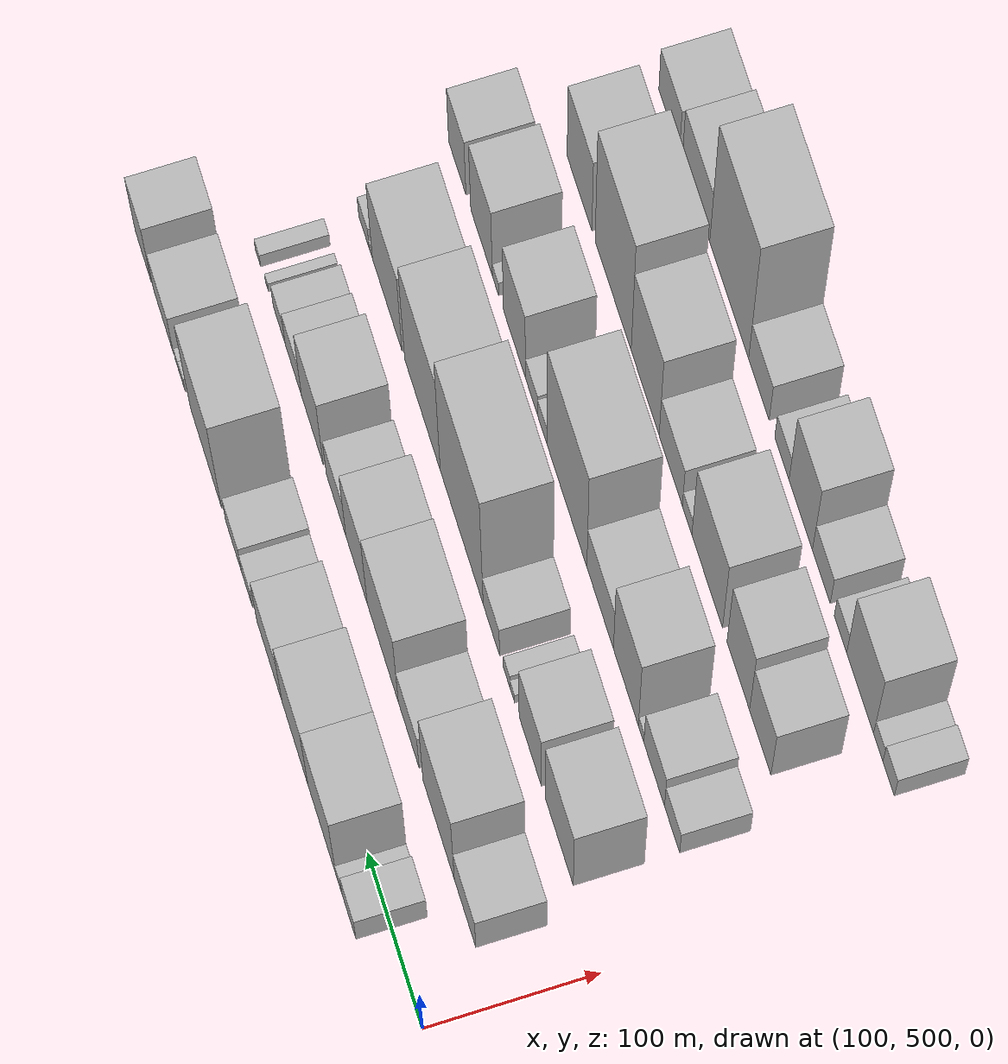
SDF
<sdf version="1.6">
 <world name="default">
  <model name="building_50">
   <static>1</static>
   <pose>100.0000 569.3878 0 0.000000 0.000000 0.000000</pose>
   <link name="link">
    <pose>0 0 24.00 0 0 0</pose>
    <collision name="collision"><geometry><box><size>40.0000 25.1628 48.0000</size></box></geometry></collision>
    <visual name="visual">
     <cast_shadows>0</cast_shadows>
     <geometry><box><size>40.0000 25.1628 48.0000</size></box></geometry>
     <material>
      <script>
       <uri>model://HANNAS_wall/materials/scripts</uri>
       <uri>model://HANNAS_wall/materials/textures</uri>
       <name>vrc/HANNAS_wall</name>
      </script>
     </material>
    </visual>
   </link>
  </model>
  <model name="building_51">
   <static>1</static>
   <pose>100.0000 587.8766 0 0.000000 0.000000 0.000000</pose>
   <link name="link">
    <pose>0 0 12.00 0 0 0</pose>
    <collision name="collision"><geometry><box><size>40.0000 11.8147 24.0000</size></box></geometry></collision>
    <visual name="visual">
     <cast_shadows>0</cast_shadows>
     <geometry><box><size>40.0000 11.8147 24.0000</size></box></geometry>
     <material>
      <script>
       <uri>model://HANNAS_wall/materials/scripts</uri>
       <uri>model://HANNAS_wall/materials/textures</uri>
       <name>vrc/HANNAS_wall</name>
      </script>
     </material>
    </visual>
   </link>
  </model>
  <model name="building_52">
   <static>1</static>
   <pose>100.0000 619.3461 0 0.000000 0.000000 0.000000</pose>
   <link name="link">
    <pose>0 0 66.00 0 0 0</pose>
    <collision name="collision"><geometry><box><size>40.0000 51.1244 132.0000</size></box></geometry></collision>
    <visual name="visual">
     <cast_shadows>0</cast_shadows>
     <geometry><box><size>40.0000 51.1244 132.0000</size></box></geometry>
     <material>
      <script>
       <uri>model://HANNAS_wall/materials/scripts</uri>
       <uri>model://HANNAS_wall/materials/textures</uri>
       <name>vrc/HANNAS_wall</name>
      </script>
     </material>
    </visual>
   </link>
  </model>
  <model name="building_53">
   <static>1</static>
   <pose>100.0000 669.0104 0 0.000000 0.000000 0.000000</pose>
   <link name="link">
    <pose>0 0 64.50 0 0 0</pose>
    <collision name="collision"><geometry><box><size>40.0000 48.2042 129.0000</size></box></geometry></collision>
    <visual name="visual">
     <cast_shadows>0</cast_shadows>
     <geometry><box><size>40.0000 48.2042 129.0000</size></box></geometry>
     <material>
      <script>
       <uri>model://HANNAS_wall/materials/scripts</uri>
       <uri>model://HANNAS_wall/materials/textures</uri>
       <name>vrc/HANNAS_wall</name>
      </script>
     </material>
    </visual>
   </link>
  </model>
  <model name="building_54">
   <static>1</static>
   <pose>100.0000 716.7406 0 0.000000 0.000000 0.000000</pose>
   <link name="link">
    <pose>0 0 45.00 0 0 0</pose>
    <collision name="collision"><geometry><box><size>40.0000 47.2561 90.0000</size></box></geometry></collision>
    <visual name="visual">
     <cast_shadows>0</cast_shadows>
     <geometry><box><size>40.0000 47.2561 90.0000</size></box></geometry>
     <material>
      <script>
       <uri>model://HANNAS_wall/materials/scripts</uri>
       <uri>model://HANNAS_wall/materials/textures</uri>
       <name>vrc/HANNAS_wall</name>
      </script>
     </material>
    </visual>
   </link>
  </model>
  <model name="building_55">
   <static>1</static>
   <pose>100.0000 758.7014 0 0.000000 0.000000 0.000000</pose>
   <link name="link">
    <pose>0 0 19.50 0 0 0</pose>
    <collision name="collision"><geometry><box><size>40.0000 20.6656 39.0000</size></box></geometry></collision>
    <visual name="visual">
     <cast_shadows>0</cast_shadows>
     <geometry><box><size>40.0000 20.6656 39.0000</size></box></geometry>
     <material>
      <script>
       <uri>model://HANNAS_wall/materials/scripts</uri>
       <uri>model://HANNAS_wall/materials/textures</uri>
       <name>vrc/HANNAS_wall</name>
      </script>
     </material>
    </visual>
   </link>
  </model>
  <model name="building_56">
   <static>1</static>
   <pose>100.0000 783.9269 0 0.000000 0.000000 0.000000</pose>
   <link name="link">
    <pose>0 0 25.50 0 0 0</pose>
    <collision name="collision"><geometry><box><size>40.0000 29.7854 51.0000</size></box></geometry></collision>
    <visual name="visual">
     <cast_shadows>0</cast_shadows>
     <geometry><box><size>40.0000 29.7854 51.0000</size></box></geometry>
     <material>
      <script>
       <uri>model://HANNAS_wall/materials/scripts</uri>
       <uri>model://HANNAS_wall/materials/textures</uri>
       <name>vrc/HANNAS_wall</name>
      </script>
     </material>
    </visual>
   </link>
  </model>
  <model name="building_57">
   <static>1</static>
   <pose>100.0000 836.3452 0 0.000000 0.000000 0.000000</pose>
   <link name="link">
    <pose>0 0 84.00 0 0 0</pose>
    <collision name="collision"><geometry><box><size>40.0000 59.0511 168.0000</size></box></geometry></collision>
    <visual name="visual">
     <cast_shadows>0</cast_shadows>
     <geometry><box><size>40.0000 59.0511 168.0000</size></box></geometry>
     <material>
      <script>
       <uri>model://HANNAS_wall/materials/scripts</uri>
       <uri>model://HANNAS_wall/materials/textures</uri>
       <name>vrc/HANNAS_wall</name>
      </script>
     </material>
    </visual>
   </link>
  </model>
  <model name="building_58">
   <static>1</static>
   <pose>100.0000 881.3237 0 0.000000 0.000000 0.000000</pose>
   <link name="link">
    <pose>0 0 12.00 0 0 0</pose>
    <collision name="collision"><geometry><box><size>40.0000 10.9061 24.0000</size></box></geometry></collision>
    <visual name="visual">
     <cast_shadows>0</cast_shadows>
     <geometry><box><size>40.0000 10.9061 24.0000</size></box></geometry>
     <material>
      <script>
       <uri>model://HANNAS_wall/materials/scripts</uri>
       <uri>model://HANNAS_wall/materials/textures</uri>
       <name>vrc/HANNAS_wall</name>
      </script>
     </material>
    </visual>
   </link>
  </model>
  <model name="building_59">
   <static>1</static>
   <pose>100.0000 891.0435 0 0.000000 0.000000 0.000000</pose>
   <link name="link">
    <pose>0 0 10.50 0 0 0</pose>
    <collision name="collision"><geometry><box><size>40.0000 8.5335 21.0000</size></box></geometry></collision>
    <visual name="visual">
     <cast_shadows>0</cast_shadows>
     <geometry><box><size>40.0000 8.5335 21.0000</size></box></geometry>
     <material>
      <script>
       <uri>model://HANNAS_wall/materials/scripts</uri>
       <uri>model://HANNAS_wall/materials/textures</uri>
       <name>vrc/HANNAS_wall</name>
      </script>
     </material>
    </visual>
   </link>
  </model>
  <model name="building_60">
   <static>1</static>
   <pose>100.0000 917.4836 0 0.000000 0.000000 0.000000</pose>
   <link name="link">
    <pose>0 0 34.50 0 0 0</pose>
    <collision name="collision"><geometry><box><size>40.0000 38.3465 69.0000</size></box></geometry></collision>
    <visual name="visual">
     <cast_shadows>0</cast_shadows>
     <geometry><box><size>40.0000 38.3465 69.0000</size></box></geometry>
     <material>
      <script>
       <uri>model://HANNAS_wall/materials/scripts</uri>
       <uri>model://HANNAS_wall/materials/textures</uri>
       <name>vrc/HANNAS_wall</name>
      </script>
     </material>
    </visual>
   </link>
  </model>
  <model name="building_61">
   <static>1</static>
   <pose>100.0000 956.0121 0 0.000000 0.000000 0.000000</pose>
   <link name="link">
    <pose>0 0 51.00 0 0 0</pose>
    <collision name="collision"><geometry><box><size>40.0000 30.7106 102.0000</size></box></geometry></collision>
    <visual name="visual">
     <cast_shadows>0</cast_shadows>
     <geometry><box><size>40.0000 30.7106 102.0000</size></box></geometry>
     <material>
      <script>
       <uri>model://HANNAS_wall/materials/scripts</uri>
       <uri>model://HANNAS_wall/materials/textures</uri>
       <name>vrc/HANNAS_wall</name>
      </script>
     </material>
    </visual>
   </link>
  </model>
  <model name="building_105">
   <static>1</static>
   <pose>160.0000 552.6745 0 0.000000 0.000000 0.000000</pose>
   <link name="link">
    <pose>0 0 34.50 0 0 0</pose>
    <collision name="collision"><geometry><box><size>40.0000 38.8337 69.0000</size></box></geometry></collision>
    <visual name="visual">
     <cast_shadows>0</cast_shadows>
     <geometry><box><size>40.0000 38.8337 69.0000</size></box></geometry>
     <material>
      <script>
       <uri>model://HANNAS_wall/materials/scripts</uri>
       <uri>model://HANNAS_wall/materials/textures</uri>
       <name>vrc/HANNAS_wall</name>
      </script>
     </material>
    </visual>
   </link>
  </model>
  <model name="building_106">
   <static>1</static>
   <pose>160.0000 600.6269 0 0.000000 0.000000 0.000000</pose>
   <link name="link">
    <pose>0 0 75.00 0 0 0</pose>
    <collision name="collision"><geometry><box><size>40.0000 57.0711 150.0000</size></box></geometry></collision>
    <visual name="visual">
     <cast_shadows>0</cast_shadows>
     <geometry><box><size>40.0000 57.0711 150.0000</size></box></geometry>
     <material>
      <script>
       <uri>model://HANNAS_wall/materials/scripts</uri>
       <uri>model://HANNAS_wall/materials/textures</uri>
       <name>vrc/HANNAS_wall</name>
      </script>
     </material>
    </visual>
   </link>
  </model>
  <model name="building_107">
   <static>1</static>
   <pose>160.0000 655.2852 0 0.000000 0.000000 0.000000</pose>
   <link name="link">
    <pose>0 0 36.00 0 0 0</pose>
    <collision name="collision"><geometry><box><size>40.0000 38.2454 72.0000</size></box></geometry></collision>
    <visual name="visual">
     <cast_shadows>0</cast_shadows>
     <geometry><box><size>40.0000 38.2454 72.0000</size></box></geometry>
     <material>
      <script>
       <uri>model://HANNAS_wall/materials/scripts</uri>
       <uri>model://HANNAS_wall/materials/textures</uri>
       <name>vrc/HANNAS_wall</name>
      </script>
     </material>
    </visual>
   </link>
  </model>
  <model name="building_108">
   <static>1</static>
   <pose>160.0000 702.9726 0 0.000000 0.000000 0.000000</pose>
   <link name="link">
    <pose>0 0 72.00 0 0 0</pose>
    <collision name="collision"><geometry><box><size>40.0000 57.1295 144.0000</size></box></geometry></collision>
    <visual name="visual">
     <cast_shadows>0</cast_shadows>
     <geometry><box><size>40.0000 57.1295 144.0000</size></box></geometry>
     <material>
      <script>
       <uri>model://HANNAS_wall/materials/scripts</uri>
       <uri>model://HANNAS_wall/materials/textures</uri>
       <name>vrc/HANNAS_wall</name>
      </script>
     </material>
    </visual>
   </link>
  </model>
  <model name="building_109">
   <static>1</static>
   <pose>160.0000 751.3881 0 0.000000 0.000000 0.000000</pose>
   <link name="link">
    <pose>0 0 66.00 0 0 0</pose>
    <collision name="collision"><geometry><box><size>40.0000 39.7014 132.0000</size></box></geometry></collision>
    <visual name="visual">
     <cast_shadows>0</cast_shadows>
     <geometry><box><size>40.0000 39.7014 132.0000</size></box></geometry>
     <material>
      <script>
       <uri>model://HANNAS_wall/materials/scripts</uri>
       <uri>model://HANNAS_wall/materials/textures</uri>
       <name>vrc/HANNAS_wall</name>
      </script>
     </material>
    </visual>
   </link>
  </model>
  <model name="building_110">
   <static>1</static>
   <pose>160.0000 789.3968 0 0.000000 0.000000 0.000000</pose>
   <link name="link">
    <pose>0 0 36.00 0 0 0</pose>
    <collision name="collision"><geometry><box><size>40.0000 36.3159 72.0000</size></box></geometry></collision>
    <visual name="visual">
     <cast_shadows>0</cast_shadows>
     <geometry><box><size>40.0000 36.3159 72.0000</size></box></geometry>
     <material>
      <script>
       <uri>model://HANNAS_wall/materials/scripts</uri>
       <uri>model://HANNAS_wall/materials/textures</uri>
       <name>vrc/HANNAS_wall</name>
      </script>
     </material>
    </visual>
   </link>
  </model>
  <model name="building_111">
   <static>1</static>
   <pose>160.0000 833.9663 0 0.000000 0.000000 0.000000</pose>
   <link name="link">
    <pose>0 0 61.50 0 0 0</pose>
    <collision name="collision"><geometry><box><size>40.0000 40.8233 123.0000</size></box></geometry></collision>
    <visual name="visual">
     <cast_shadows>0</cast_shadows>
     <geometry><box><size>40.0000 40.8233 123.0000</size></box></geometry>
     <material>
      <script>
       <uri>model://HANNAS_wall/materials/scripts</uri>
       <uri>model://HANNAS_wall/materials/textures</uri>
       <name>vrc/HANNAS_wall</name>
      </script>
     </material>
    </visual>
   </link>
  </model>
  <model name="building_112">
   <static>1</static>
   <pose>160.0000 869.8284 0 0.000000 0.000000 0.000000</pose>
   <link name="link">
    <pose>0 0 30.00 0 0 0</pose>
    <collision name="collision"><geometry><box><size>40.0000 30.9010 60.0000</size></box></geometry></collision>
    <visual name="visual">
     <cast_shadows>0</cast_shadows>
     <geometry><box><size>40.0000 30.9010 60.0000</size></box></geometry>
     <material>
      <script>
       <uri>model://HANNAS_wall/materials/scripts</uri>
       <uri>model://HANNAS_wall/materials/textures</uri>
       <name>vrc/HANNAS_wall</name>
      </script>
     </material>
    </visual>
   </link>
  </model>
  <model name="building_113">
   <static>1</static>
   <pose>160.0000 896.4220 0 0.000000 0.000000 0.000000</pose>
   <link name="link">
    <pose>0 0 21.00 0 0 0</pose>
    <collision name="collision"><geometry><box><size>40.0000 22.2862 42.0000</size></box></geometry></collision>
    <visual name="visual">
     <cast_shadows>0</cast_shadows>
     <geometry><box><size>40.0000 22.2862 42.0000</size></box></geometry>
     <material>
      <script>
       <uri>model://HANNAS_wall/materials/scripts</uri>
       <uri>model://HANNAS_wall/materials/textures</uri>
       <name>vrc/HANNAS_wall</name>
      </script>
     </material>
    </visual>
   </link>
  </model>
  <model name="building_114">
   <static>1</static>
   <pose>160.0000 919.6144 0 0.000000 0.000000 0.000000</pose>
   <link name="link">
    <pose>0 0 7.50 0 0 0</pose>
    <collision name="collision"><geometry><box><size>40.0000 6.0985 15.0000</size></box></geometry></collision>
    <visual name="visual">
     <cast_shadows>0</cast_shadows>
     <geometry><box><size>40.0000 6.0985 15.0000</size></box></geometry>
     <material>
      <script>
       <uri>model://HANNAS_wall/materials/scripts</uri>
       <uri>model://HANNAS_wall/materials/textures</uri>
       <name>vrc/HANNAS_wall</name>
      </script>
     </material>
    </visual>
   </link>
  </model>
  <model name="building_115">
   <static>1</static>
   <pose>160.0000 936.6281 0 0.000000 0.000000 0.000000</pose>
   <link name="link">
    <pose>0 0 10.50 0 0 0</pose>
    <collision name="collision"><geometry><box><size>40.0000 9.9290 21.0000</size></box></geometry></collision>
    <visual name="visual">
     <cast_shadows>0</cast_shadows>
     <geometry><box><size>40.0000 9.9290 21.0000</size></box></geometry>
     <material>
      <script>
       <uri>model://HANNAS_wall/materials/scripts</uri>
       <uri>model://HANNAS_wall/materials/textures</uri>
       <name>vrc/HANNAS_wall</name>
      </script>
     </material>
    </visual>
   </link>
  </model>
  <model name="building_160">
   <static>1</static>
   <pose>220.0000 574.8858 0 0.000000 0.000000 0.000000</pose>
   <link name="link">
    <pose>0 0 63.00 0 0 0</pose>
    <collision name="collision"><geometry><box><size>40.0000 50.1714 126.0000</size></box></geometry></collision>
    <visual name="visual">
     <cast_shadows>0</cast_shadows>
     <geometry><box><size>40.0000 50.1714 126.0000</size></box></geometry>
     <material>
      <script>
       <uri>model://HANNAS_wall/materials/scripts</uri>
       <uri>model://HANNAS_wall/materials/textures</uri>
       <name>vrc/HANNAS_wall</name>
      </script>
     </material>
    </visual>
   </link>
  </model>
  <model name="building_161">
   <static>1</static>
   <pose>220.0000 627.0878 0 0.000000 0.000000 0.000000</pose>
   <link name="link">
    <pose>0 0 55.50 0 0 0</pose>
    <collision name="collision"><geometry><box><size>40.0000 40.2326 111.0000</size></box></geometry></collision>
    <visual name="visual">
     <cast_shadows>0</cast_shadows>
     <geometry><box><size>40.0000 40.2326 111.0000</size></box></geometry>
     <material>
      <script>
       <uri>model://HANNAS_wall/materials/scripts</uri>
       <uri>model://HANNAS_wall/materials/textures</uri>
       <name>vrc/HANNAS_wall</name>
      </script>
     </material>
    </visual>
   </link>
  </model>
  <model name="building_162">
   <static>1</static>
   <pose>220.0000 659.6000 0 0.000000 0.000000 0.000000</pose>
   <link name="link">
    <pose>0 0 9.00 0 0 0</pose>
    <collision name="collision"><geometry><box><size>40.0000 8.7918 18.0000</size></box></geometry></collision>
    <visual name="visual">
     <cast_shadows>0</cast_shadows>
     <geometry><box><size>40.0000 8.7918 18.0000</size></box></geometry>
     <material>
      <script>
       <uri>model://HANNAS_wall/materials/scripts</uri>
       <uri>model://HANNAS_wall/materials/textures</uri>
       <name>vrc/HANNAS_wall</name>
      </script>
     </material>
    </visual>
   </link>
  </model>
  <model name="building_163">
   <static>1</static>
   <pose>220.0000 669.7903 0 0.000000 0.000000 0.000000</pose>
   <link name="link">
    <pose>0 0 13.50 0 0 0</pose>
    <collision name="collision"><geometry><box><size>40.0000 11.5890 27.0000</size></box></geometry></collision>
    <visual name="visual">
     <cast_shadows>0</cast_shadows>
     <geometry><box><size>40.0000 11.5890 27.0000</size></box></geometry>
     <material>
      <script>
       <uri>model://HANNAS_wall/materials/scripts</uri>
       <uri>model://HANNAS_wall/materials/textures</uri>
       <name>vrc/HANNAS_wall</name>
      </script>
     </material>
    </visual>
   </link>
  </model>
  <model name="building_164">
   <static>1</static>
   <pose>220.0000 697.6209 0 0.000000 0.000000 0.000000</pose>
   <link name="link">
    <pose>0 0 30.00 0 0 0</pose>
    <collision name="collision"><geometry><box><size>40.0000 30.0722 60.0000</size></box></geometry></collision>
    <visual name="visual">
     <cast_shadows>0</cast_shadows>
     <geometry><box><size>40.0000 30.0722 60.0000</size></box></geometry>
     <material>
      <script>
       <uri>model://HANNAS_wall/materials/scripts</uri>
       <uri>model://HANNAS_wall/materials/textures</uri>
       <name>vrc/HANNAS_wall</name>
      </script>
     </material>
    </visual>
   </link>
  </model>
  <model name="building_165">
   <static>1</static>
   <pose>220.0000 751.9782 0 0.000000 0.000000 0.000000</pose>
   <link name="link">
    <pose>0 0 111.00 0 0 0</pose>
    <collision name="collision"><geometry><box><size>40.0000 78.6422 222.0000</size></box></geometry></collision>
    <visual name="visual">
     <cast_shadows>0</cast_shadows>
     <geometry><box><size>40.0000 78.6422 222.0000</size></box></geometry>
     <material>
      <script>
       <uri>model://HANNAS_wall/materials/scripts</uri>
       <uri>model://HANNAS_wall/materials/textures</uri>
       <name>vrc/HANNAS_wall</name>
      </script>
     </material>
    </visual>
   </link>
  </model>
  <model name="building_166">
   <static>1</static>
   <pose>220.0000 824.3027 0 0.000000 0.000000 0.000000</pose>
   <link name="link">
    <pose>0 0 90.00 0 0 0</pose>
    <collision name="collision"><geometry><box><size>40.0000 66.0068 180.0000</size></box></geometry></collision>
    <visual name="visual">
     <cast_shadows>0</cast_shadows>
     <geometry><box><size>40.0000 66.0068 180.0000</size></box></geometry>
     <material>
      <script>
       <uri>model://HANNAS_wall/materials/scripts</uri>
       <uri>model://HANNAS_wall/materials/textures</uri>
       <name>vrc/HANNAS_wall</name>
      </script>
     </material>
    </visual>
   </link>
  </model>
  <model name="building_167">
   <static>1</static>
   <pose>220.0000 889.9372 0 0.000000 0.000000 0.000000</pose>
   <link name="link">
    <pose>0 0 70.50 0 0 0</pose>
    <collision name="collision"><geometry><box><size>40.0000 55.2624 141.0000</size></box></geometry></collision>
    <visual name="visual">
     <cast_shadows>0</cast_shadows>
     <geometry><box><size>40.0000 55.2624 141.0000</size></box></geometry>
     <material>
      <script>
       <uri>model://HANNAS_wall/materials/scripts</uri>
       <uri>model://HANNAS_wall/materials/textures</uri>
       <name>vrc/HANNAS_wall</name>
      </script>
     </material>
    </visual>
   </link>
  </model>
  <model name="building_168">
   <static>1</static>
   <pose>220.0000 920.6614 0 0.000000 0.000000 0.000000</pose>
   <link name="link">
    <pose>0 0 7.50 0 0 0</pose>
    <collision name="collision"><geometry><box><size>40.0000 6.1858 15.0000</size></box></geometry></collision>
    <visual name="visual">
     <cast_shadows>0</cast_shadows>
     <geometry><box><size>40.0000 6.1858 15.0000</size></box></geometry>
     <material>
      <script>
       <uri>model://HANNAS_wall/materials/scripts</uri>
       <uri>model://HANNAS_wall/materials/textures</uri>
       <name>vrc/HANNAS_wall</name>
      </script>
     </material>
    </visual>
   </link>
  </model>
  <model name="building_169">
   <static>1</static>
   <pose>220.0000 933.4754 0 0.000000 0.000000 0.000000</pose>
   <link name="link">
    <pose>0 0 18.00 0 0 0</pose>
    <collision name="collision"><geometry><box><size>40.0000 19.4423 36.0000</size></box></geometry></collision>
    <visual name="visual">
     <cast_shadows>0</cast_shadows>
     <geometry><box><size>40.0000 19.4423 36.0000</size></box></geometry>
     <material>
      <script>
       <uri>model://HANNAS_wall/materials/scripts</uri>
       <uri>model://HANNAS_wall/materials/textures</uri>
       <name>vrc/HANNAS_wall</name>
      </script>
     </material>
    </visual>
   </link>
  </model>
  <model name="building_209">
   <static>1</static>
   <pose>280.0000 563.1591 0 0.000000 0.000000 0.000000</pose>
   <link name="link">
    <pose>0 0 24.00 0 0 0</pose>
    <collision name="collision"><geometry><box><size>40.0000 26.8155 48.0000</size></box></geometry></collision>
    <visual name="visual">
     <cast_shadows>0</cast_shadows>
     <geometry><box><size>40.0000 26.8155 48.0000</size></box></geometry>
     <material>
      <script>
       <uri>model://HANNAS_wall/materials/scripts</uri>
       <uri>model://HANNAS_wall/materials/textures</uri>
       <name>vrc/HANNAS_wall</name>
      </script>
     </material>
    </visual>
   </link>
  </model>
  <model name="building_210">
   <static>1</static>
   <pose>280.0000 594.9593 0 0.000000 0.000000 0.000000</pose>
   <link name="link">
    <pose>0 0 34.50 0 0 0</pose>
    <collision name="collision"><geometry><box><size>40.0000 36.7851 69.0000</size></box></geometry></collision>
    <visual name="visual">
     <cast_shadows>0</cast_shadows>
     <geometry><box><size>40.0000 36.7851 69.0000</size></box></geometry>
     <material>
      <script>
       <uri>model://HANNAS_wall/materials/scripts</uri>
       <uri>model://HANNAS_wall/materials/textures</uri>
       <name>vrc/HANNAS_wall</name>
      </script>
     </material>
    </visual>
   </link>
  </model>
  <model name="building_211">
   <static>1</static>
   <pose>280.0000 618.2281 0 0.000000 0.000000 0.000000</pose>
   <link name="link">
    <pose>0 0 10.50 0 0 0</pose>
    <collision name="collision"><geometry><box><size>40.0000 9.7525 21.0000</size></box></geometry></collision>
    <visual name="visual">
     <cast_shadows>0</cast_shadows>
     <geometry><box><size>40.0000 9.7525 21.0000</size></box></geometry>
     <material>
      <script>
       <uri>model://HANNAS_wall/materials/scripts</uri>
       <uri>model://HANNAS_wall/materials/textures</uri>
       <name>vrc/HANNAS_wall</name>
      </script>
     </material>
    </visual>
   </link>
  </model>
  <model name="building_212">
   <static>1</static>
   <pose>280.0000 645.4189 0 0.000000 0.000000 0.000000</pose>
   <link name="link">
    <pose>0 0 70.50 0 0 0</pose>
    <collision name="collision"><geometry><box><size>40.0000 44.6291 141.0000</size></box></geometry></collision>
    <visual name="visual">
     <cast_shadows>0</cast_shadows>
     <geometry><box><size>40.0000 44.6291 141.0000</size></box></geometry>
     <material>
      <script>
       <uri>model://HANNAS_wall/materials/scripts</uri>
       <uri>model://HANNAS_wall/materials/textures</uri>
       <name>vrc/HANNAS_wall</name>
      </script>
     </material>
    </visual>
   </link>
  </model>
  <model name="building_213">
   <static>1</static>
   <pose>280.0000 691.6787 0 0.000000 0.000000 0.000000</pose>
   <link name="link">
    <pose>0 0 42.00 0 0 0</pose>
    <collision name="collision"><geometry><box><size>40.0000 47.8906 84.0000</size></box></geometry></collision>
    <visual name="visual">
     <cast_shadows>0</cast_shadows>
     <geometry><box><size>40.0000 47.8906 84.0000</size></box></geometry>
     <material>
      <script>
       <uri>model://HANNAS_wall/materials/scripts</uri>
       <uri>model://HANNAS_wall/materials/textures</uri>
       <name>vrc/HANNAS_wall</name>
      </script>
     </material>
    </visual>
   </link>
  </model>
  <model name="building_214">
   <static>1</static>
   <pose>280.0000 751.4048 0 0.000000 0.000000 0.000000</pose>
   <link name="link">
    <pose>0 0 96.00 0 0 0</pose>
    <collision name="collision"><geometry><box><size>40.0000 71.5616 192.0000</size></box></geometry></collision>
    <visual name="visual">
     <cast_shadows>0</cast_shadows>
     <geometry><box><size>40.0000 71.5616 192.0000</size></box></geometry>
     <material>
      <script>
       <uri>model://HANNAS_wall/materials/scripts</uri>
       <uri>model://HANNAS_wall/materials/textures</uri>
       <name>vrc/HANNAS_wall</name>
      </script>
     </material>
    </visual>
   </link>
  </model>
  <model name="building_215">
   <static>1</static>
   <pose>280.0000 796.1193 0 0.000000 0.000000 0.000000</pose>
   <link name="link">
    <pose>0 0 16.50 0 0 0</pose>
    <collision name="collision"><geometry><box><size>40.0000 17.8673 33.0000</size></box></geometry></collision>
    <visual name="visual">
     <cast_shadows>0</cast_shadows>
     <geometry><box><size>40.0000 17.8673 33.0000</size></box></geometry>
     <material>
      <script>
       <uri>model://HANNAS_wall/materials/scripts</uri>
       <uri>model://HANNAS_wall/materials/textures</uri>
       <name>vrc/HANNAS_wall</name>
      </script>
     </material>
    </visual>
   </link>
  </model>
  <model name="building_216">
   <static>1</static>
   <pose>280.0000 816.0858 0 0.000000 0.000000 0.000000</pose>
   <link name="link">
    <pose>0 0 19.50 0 0 0</pose>
    <collision name="collision"><geometry><box><size>40.0000 22.0657 39.0000</size></box></geometry></collision>
    <visual name="visual">
     <cast_shadows>0</cast_shadows>
     <geometry><box><size>40.0000 22.0657 39.0000</size></box></geometry>
     <material>
      <script>
       <uri>model://HANNAS_wall/materials/scripts</uri>
       <uri>model://HANNAS_wall/materials/textures</uri>
       <name>vrc/HANNAS_wall</name>
      </script>
     </material>
    </visual>
   </link>
  </model>
  <model name="building_217">
   <static>1</static>
   <pose>280.0000 847.3900 0 0.000000 0.000000 0.000000</pose>
   <link name="link">
    <pose>0 0 61.50 0 0 0</pose>
    <collision name="collision"><geometry><box><size>40.0000 40.5428 123.0000</size></box></geometry></collision>
    <visual name="visual">
     <cast_shadows>0</cast_shadows>
     <geometry><box><size>40.0000 40.5428 123.0000</size></box></geometry>
     <material>
      <script>
       <uri>model://HANNAS_wall/materials/scripts</uri>
       <uri>model://HANNAS_wall/materials/textures</uri>
       <name>vrc/HANNAS_wall</name>
      </script>
     </material>
    </visual>
   </link>
  </model>
  <model name="building_218">
   <static>1</static>
   <pose>280.0000 882.4092 0 0.000000 0.000000 0.000000</pose>
   <link name="link">
    <pose>0 0 12.00 0 0 0</pose>
    <collision name="collision"><geometry><box><size>40.0000 11.4954 24.0000</size></box></geometry></collision>
    <visual name="visual">
     <cast_shadows>0</cast_shadows>
     <geometry><box><size>40.0000 11.4954 24.0000</size></box></geometry>
     <material>
      <script>
       <uri>model://HANNAS_wall/materials/scripts</uri>
       <uri>model://HANNAS_wall/materials/textures</uri>
       <name>vrc/HANNAS_wall</name>
      </script>
     </material>
    </visual>
   </link>
  </model>
  <model name="building_219">
   <static>1</static>
   <pose>280.0000 908.1779 0 0.000000 0.000000 0.000000</pose>
   <link name="link">
    <pose>0 0 60.00 0 0 0</pose>
    <collision name="collision"><geometry><box><size>40.0000 40.0420 120.0000</size></box></geometry></collision>
    <visual name="visual">
     <cast_shadows>0</cast_shadows>
     <geometry><box><size>40.0000 40.0420 120.0000</size></box></geometry>
     <material>
      <script>
       <uri>model://HANNAS_wall/materials/scripts</uri>
       <uri>model://HANNAS_wall/materials/textures</uri>
       <name>vrc/HANNAS_wall</name>
      </script>
     </material>
    </visual>
   </link>
  </model>
  <model name="building_220">
   <static>1</static>
   <pose>280.0000 953.2019 0 0.000000 0.000000 0.000000</pose>
   <link name="link">
    <pose>0 0 48.00 0 0 0</pose>
    <collision name="collision"><geometry><box><size>40.0000 32.0060 96.0000</size></box></geometry></collision>
    <visual name="visual">
     <cast_shadows>0</cast_shadows>
     <geometry><box><size>40.0000 32.0060 96.0000</size></box></geometry>
     <material>
      <script>
       <uri>model://HANNAS_wall/materials/scripts</uri>
       <uri>model://HANNAS_wall/materials/textures</uri>
       <name>vrc/HANNAS_wall</name>
      </script>
     </material>
    </visual>
   </link>
  </model>
  <model name="building_260">
   <static>1</static>
   <pose>340.0000 594.5265 0 0.000000 0.000000 0.000000</pose>
   <link name="link">
    <pose>0 0 48.00 0 0 0</pose>
    <collision name="collision"><geometry><box><size>40.0000 37.6532 96.0000</size></box></geometry></collision>
    <visual name="visual">
     <cast_shadows>0</cast_shadows>
     <geometry><box><size>40.0000 37.6532 96.0000</size></box></geometry>
     <material>
      <script>
       <uri>model://HANNAS_wall/materials/scripts</uri>
       <uri>model://HANNAS_wall/materials/textures</uri>
       <name>vrc/HANNAS_wall</name>
      </script>
     </material>
    </visual>
   </link>
  </model>
  <model name="building_261">
   <static>1</static>
   <pose>340.0000 633.2509 0 0.000000 0.000000 0.000000</pose>
   <link name="link">
    <pose>0 0 61.50 0 0 0</pose>
    <collision name="collision"><geometry><box><size>40.0000 39.7957 123.0000</size></box></geometry></collision>
    <visual name="visual">
     <cast_shadows>0</cast_shadows>
     <geometry><box><size>40.0000 39.7957 123.0000</size></box></geometry>
     <material>
      <script>
       <uri>model://HANNAS_wall/materials/scripts</uri>
       <uri>model://HANNAS_wall/materials/textures</uri>
       <name>vrc/HANNAS_wall</name>
      </script>
     </material>
    </visual>
   </link>
  </model>
  <model name="building_262">
   <static>1</static>
   <pose>340.0000 688.4518 0 0.000000 0.000000 0.000000</pose>
   <link name="link">
    <pose>0 0 69.00 0 0 0</pose>
    <collision name="collision"><geometry><box><size>40.0000 54.6061 138.0000</size></box></geometry></collision>
    <visual name="visual">
     <cast_shadows>0</cast_shadows>
     <geometry><box><size>40.0000 54.6061 138.0000</size></box></geometry>
     <material>
      <script>
       <uri>model://HANNAS_wall/materials/scripts</uri>
       <uri>model://HANNAS_wall/materials/textures</uri>
       <name>vrc/HANNAS_wall</name>
      </script>
     </material>
    </visual>
   </link>
  </model>
  <model name="building_263">
   <static>1</static>
   <pose>340.0000 724.2581 0 0.000000 0.000000 0.000000</pose>
   <link name="link">
    <pose>0 0 15.00 0 0 0</pose>
    <collision name="collision"><geometry><box><size>40.0000 17.0064 30.0000</size></box></geometry></collision>
    <visual name="visual">
     <cast_shadows>0</cast_shadows>
     <geometry><box><size>40.0000 17.0064 30.0000</size></box></geometry>
     <material>
      <script>
       <uri>model://HANNAS_wall/materials/scripts</uri>
       <uri>model://HANNAS_wall/materials/textures</uri>
       <name>vrc/HANNAS_wall</name>
      </script>
     </material>
    </visual>
   </link>
  </model>
  <model name="building_264">
   <static>1</static>
   <pose>340.0000 753.6052 0 0.000000 0.000000 0.000000</pose>
   <link name="link">
    <pose>0 0 37.50 0 0 0</pose>
    <collision name="collision"><geometry><box><size>40.0000 41.6880 75.0000</size></box></geometry></collision>
    <visual name="visual">
     <cast_shadows>0</cast_shadows>
     <geometry><box><size>40.0000 41.6880 75.0000</size></box></geometry>
     <material>
      <script>
       <uri>model://HANNAS_wall/materials/scripts</uri>
       <uri>model://HANNAS_wall/materials/textures</uri>
       <name>vrc/HANNAS_wall</name>
      </script>
     </material>
    </visual>
   </link>
  </model>
  <model name="building_265">
   <static>1</static>
   <pose>340.0000 799.7187 0 0.000000 0.000000 0.000000</pose>
   <link name="link">
    <pose>0 0 75.00 0 0 0</pose>
    <collision name="collision"><geometry><box><size>40.0000 50.5390 150.0000</size></box></geometry></collision>
    <visual name="visual">
     <cast_shadows>0</cast_shadows>
     <geometry><box><size>40.0000 50.5390 150.0000</size></box></geometry>
     <material>
      <script>
       <uri>model://HANNAS_wall/materials/scripts</uri>
       <uri>model://HANNAS_wall/materials/textures</uri>
       <name>vrc/HANNAS_wall</name>
      </script>
     </material>
    </visual>
   </link>
  </model>
  <model name="building_266">
   <static>1</static>
   <pose>340.0000 857.7779 0 0.000000 0.000000 0.000000</pose>
   <link name="link">
    <pose>0 0 100.50 0 0 0</pose>
    <collision name="collision"><geometry><box><size>40.0000 65.5795 201.0000</size></box></geometry></collision>
    <visual name="visual">
     <cast_shadows>0</cast_shadows>
     <geometry><box><size>40.0000 65.5795 201.0000</size></box></geometry>
     <material>
      <script>
       <uri>model://HANNAS_wall/materials/scripts</uri>
       <uri>model://HANNAS_wall/materials/textures</uri>
       <name>vrc/HANNAS_wall</name>
      </script>
     </material>
    </visual>
   </link>
  </model>
  <model name="building_267">
   <static>1</static>
   <pose>340.0000 919.1476 0 0.000000 0.000000 0.000000</pose>
   <link name="link">
    <pose>0 0 63.00 0 0 0</pose>
    <collision name="collision"><geometry><box><size>40.0000 45.1597 126.0000</size></box></geometry></collision>
    <visual name="visual">
     <cast_shadows>0</cast_shadows>
     <geometry><box><size>40.0000 45.1597 126.0000</size></box></geometry>
     <material>
      <script>
       <uri>model://HANNAS_wall/materials/scripts</uri>
       <uri>model://HANNAS_wall/materials/textures</uri>
       <name>vrc/HANNAS_wall</name>
      </script>
     </material>
    </visual>
   </link>
  </model>
  <model name="building_308">
   <static>1</static>
   <pose>400.0000 554.8026 0 0.000000 0.000000 0.000000</pose>
   <link name="link">
    <pose>0 0 19.50 0 0 0</pose>
    <collision name="collision"><geometry><box><size>40.0000 19.7521 39.0000</size></box></geometry></collision>
    <visual name="visual">
     <cast_shadows>0</cast_shadows>
     <geometry><box><size>40.0000 19.7521 39.0000</size></box></geometry>
     <material>
      <script>
       <uri>model://HANNAS_wall/materials/scripts</uri>
       <uri>model://HANNAS_wall/materials/textures</uri>
       <name>vrc/HANNAS_wall</name>
      </script>
     </material>
    </visual>
   </link>
  </model>
  <model name="building_309">
   <static>1</static>
   <pose>400.0000 572.7688 0 0.000000 0.000000 0.000000</pose>
   <link name="link">
    <pose>0 0 15.00 0 0 0</pose>
    <collision name="collision"><geometry><box><size>40.0000 16.1803 30.0000</size></box></geometry></collision>
    <visual name="visual">
     <cast_shadows>0</cast_shadows>
     <geometry><box><size>40.0000 16.1803 30.0000</size></box></geometry>
     <material>
      <script>
       <uri>model://HANNAS_wall/materials/scripts</uri>
       <uri>model://HANNAS_wall/materials/textures</uri>
       <name>vrc/HANNAS_wall</name>
      </script>
     </material>
    </visual>
   </link>
  </model>
  <model name="building_310">
   <static>1</static>
   <pose>400.0000 604.3179 0 0.000000 0.000000 0.000000</pose>
   <link name="link">
    <pose>0 0 63.00 0 0 0</pose>
    <collision name="collision"><geometry><box><size>40.0000 46.9178 126.0000</size></box></geometry></collision>
    <visual name="visual">
     <cast_shadows>0</cast_shadows>
     <geometry><box><size>40.0000 46.9178 126.0000</size></box></geometry>
     <material>
      <script>
       <uri>model://HANNAS_wall/materials/scripts</uri>
       <uri>model://HANNAS_wall/materials/textures</uri>
       <name>vrc/HANNAS_wall</name>
      </script>
     </material>
    </visual>
   </link>
  </model>
  <model name="building_311">
   <static>1</static>
   <pose>400.0000 638.6739 0 0.000000 0.000000 0.000000</pose>
   <link name="link">
    <pose>0 0 19.50 0 0 0</pose>
    <collision name="collision"><geometry><box><size>40.0000 21.7942 39.0000</size></box></geometry></collision>
    <visual name="visual">
     <cast_shadows>0</cast_shadows>
     <geometry><box><size>40.0000 21.7942 39.0000</size></box></geometry>
     <material>
      <script>
       <uri>model://HANNAS_wall/materials/scripts</uri>
       <uri>model://HANNAS_wall/materials/textures</uri>
       <name>vrc/HANNAS_wall</name>
      </script>
     </material>
    </visual>
   </link>
  </model>
  <model name="building_312">
   <static>1</static>
   <pose>400.0000 672.2091 0 0.000000 0.000000 0.000000</pose>
   <link name="link">
    <pose>0 0 27.00 0 0 0</pose>
    <collision name="collision"><geometry><box><size>40.0000 31.2762 54.0000</size></box></geometry></collision>
    <visual name="visual">
     <cast_shadows>0</cast_shadows>
     <geometry><box><size>40.0000 31.2762 54.0000</size></box></geometry>
     <material>
      <script>
       <uri>model://HANNAS_wall/materials/scripts</uri>
       <uri>model://HANNAS_wall/materials/textures</uri>
       <name>vrc/HANNAS_wall</name>
      </script>
     </material>
    </visual>
   </link>
  </model>
  <model name="building_313">
   <static>1</static>
   <pose>400.0000 708.5561 0 0.000000 0.000000 0.000000</pose>
   <link name="link">
    <pose>0 0 64.50 0 0 0</pose>
    <collision name="collision"><geometry><box><size>40.0000 41.4180 129.0000</size></box></geometry></collision>
    <visual name="visual">
     <cast_shadows>0</cast_shadows>
     <geometry><box><size>40.0000 41.4180 129.0000</size></box></geometry>
     <material>
      <script>
       <uri>model://HANNAS_wall/materials/scripts</uri>
       <uri>model://HANNAS_wall/materials/textures</uri>
       <name>vrc/HANNAS_wall</name>
      </script>
     </material>
    </visual>
   </link>
  </model>
  <model name="building_314">
   <static>1</static>
   <pose>400.0000 741.9159 0 0.000000 0.000000 0.000000</pose>
   <link name="link">
    <pose>0 0 22.50 0 0 0</pose>
    <collision name="collision"><geometry><box><size>40.0000 25.3016 45.0000</size></box></geometry></collision>
    <visual name="visual">
     <cast_shadows>0</cast_shadows>
     <geometry><box><size>40.0000 25.3016 45.0000</size></box></geometry>
     <material>
      <script>
       <uri>model://HANNAS_wall/materials/scripts</uri>
       <uri>model://HANNAS_wall/materials/textures</uri>
       <name>vrc/HANNAS_wall</name>
      </script>
     </material>
    </visual>
   </link>
  </model>
  <model name="building_315">
   <static>1</static>
   <pose>400.0000 782.8417 0 0.000000 0.000000 0.000000</pose>
   <link name="link">
    <pose>0 0 34.50 0 0 0</pose>
    <collision name="collision"><geometry><box><size>40.0000 36.5500 69.0000</size></box></geometry></collision>
    <visual name="visual">
     <cast_shadows>0</cast_shadows>
     <geometry><box><size>40.0000 36.5500 69.0000</size></box></geometry>
     <material>
      <script>
       <uri>model://HANNAS_wall/materials/scripts</uri>
       <uri>model://HANNAS_wall/materials/textures</uri>
       <name>vrc/HANNAS_wall</name>
      </script>
     </material>
    </visual>
   </link>
  </model>
  <model name="building_316">
   <static>1</static>
   <pose>400.0000 836.0640 0 0.000000 0.000000 0.000000</pose>
   <link name="link">
    <pose>0 0 106.50 0 0 0</pose>
    <collision name="collision"><geometry><box><size>40.0000 69.8947 213.0000</size></box></geometry></collision>
    <visual name="visual">
     <cast_shadows>0</cast_shadows>
     <geometry><box><size>40.0000 69.8947 213.0000</size></box></geometry>
     <material>
      <script>
       <uri>model://HANNAS_wall/materials/scripts</uri>
       <uri>model://HANNAS_wall/materials/textures</uri>
       <name>vrc/HANNAS_wall</name>
      </script>
     </material>
    </visual>
   </link>
  </model>
  <model name="building_317">
   <static>1</static>
   <pose>400.0000 895.8332 0 0.000000 0.000000 0.000000</pose>
   <link name="link">
    <pose>0 0 45.00 0 0 0</pose>
    <collision name="collision"><geometry><box><size>40.0000 49.6437 90.0000</size></box></geometry></collision>
    <visual name="visual">
     <cast_shadows>0</cast_shadows>
     <geometry><box><size>40.0000 49.6437 90.0000</size></box></geometry>
     <material>
      <script>
       <uri>model://HANNAS_wall/materials/scripts</uri>
       <uri>model://HANNAS_wall/materials/textures</uri>
       <name>vrc/HANNAS_wall</name>
      </script>
     </material>
    </visual>
   </link>
  </model>
  <model name="building_318">
   <static>1</static>
   <pose>400.0000 944.4630 0 0.000000 0.000000 0.000000</pose>
   <link name="link">
    <pose>0 0 36.00 0 0 0</pose>
    <collision name="collision"><geometry><box><size>40.0000 37.6157 72.0000</size></box></geometry></collision>
    <visual name="visual">
     <cast_shadows>0</cast_shadows>
     <geometry><box><size>40.0000 37.6157 72.0000</size></box></geometry>
     <material>
      <script>
       <uri>model://HANNAS_wall/materials/scripts</uri>
       <uri>model://HANNAS_wall/materials/textures</uri>
       <name>vrc/HANNAS_wall</name>
      </script>
     </material>
    </visual>
   </link>
  </model>
 </world>
</sdf>
